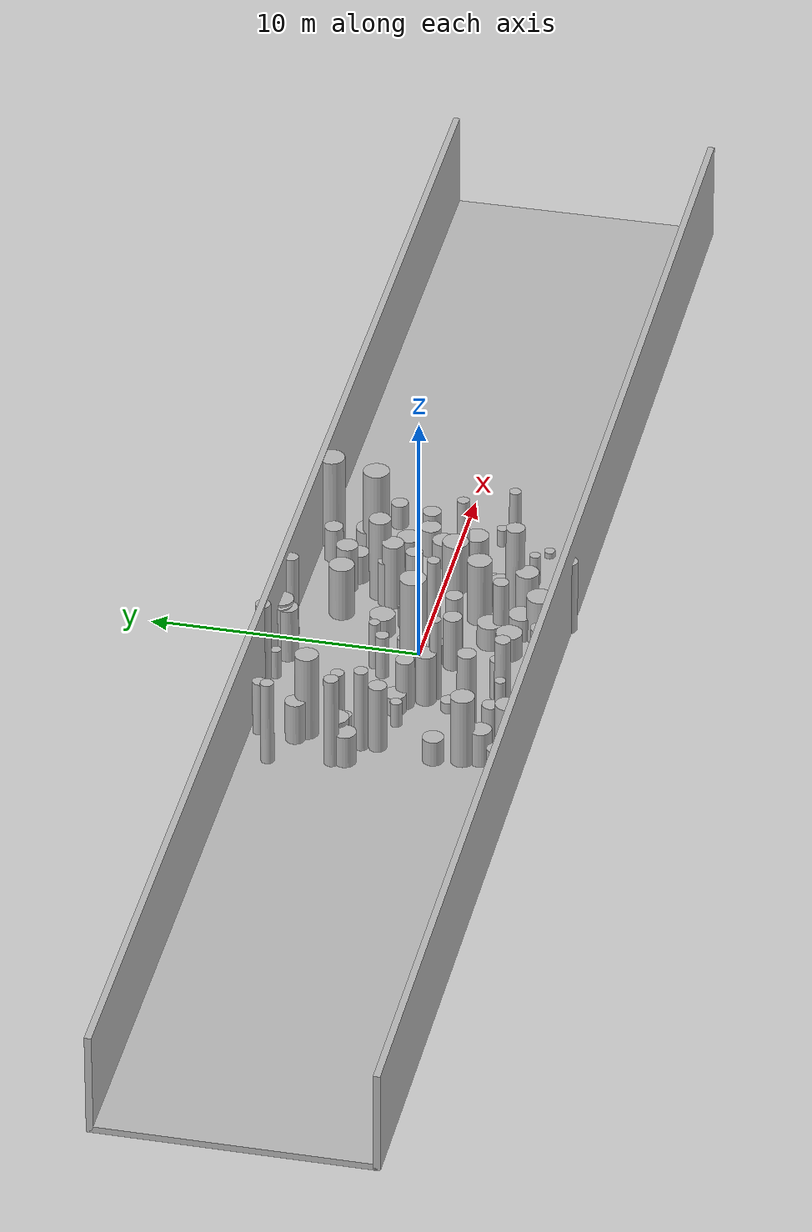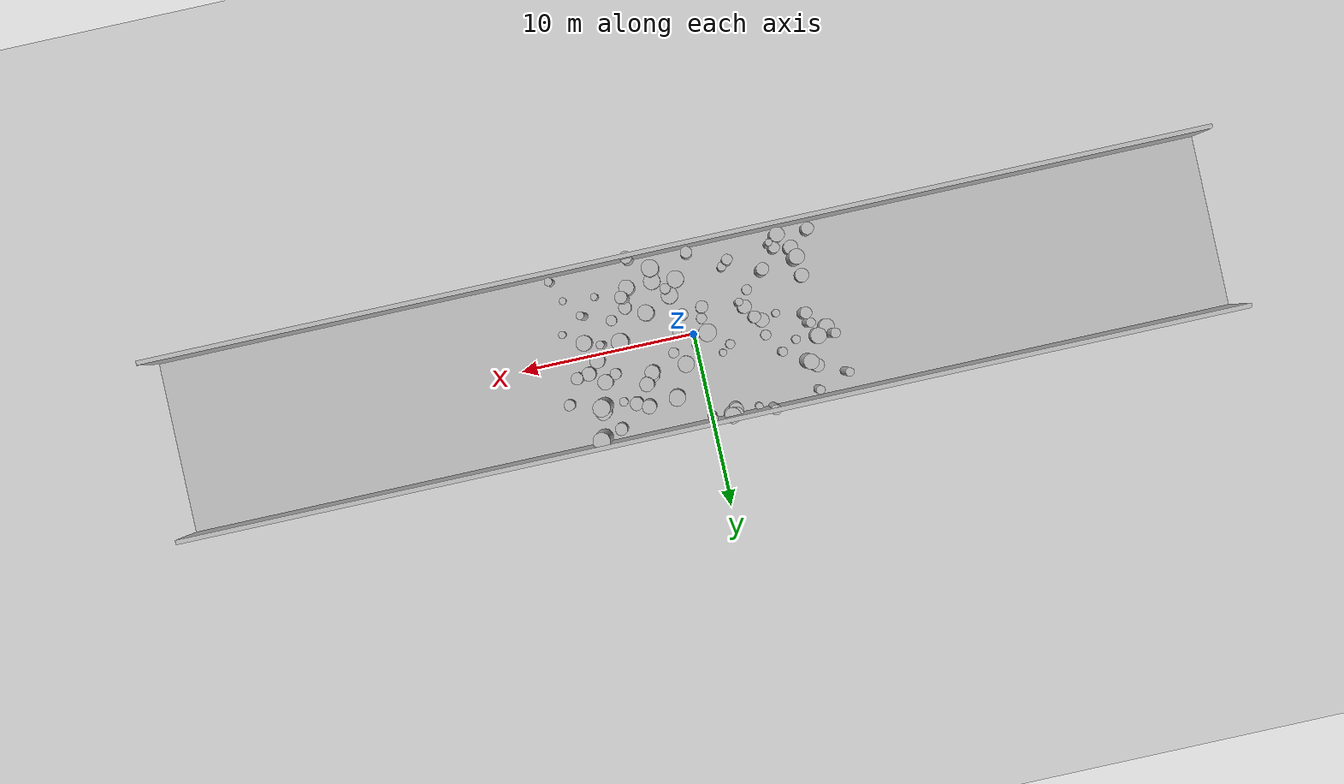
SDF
<sdf version="1.4">
 <world name="default">
  <include><uri>model://ground_plane</uri></include>
  <include><uri>model://sun</uri></include>
  <model name="forest">
   <static>true</static>
   <link name="cylinder0">
    <pose>3.4628413697569584 -2.289347202412324 0.6654422106744277 0 0 0</pose>
    <visual name="visual">
     <geometry>
      <cylinder><radius>0.3623388396721826</radius><length>1.3308844213488553</length></cylinder>
     </geometry>
    </visual>
    <collision name="collision">
     <geometry>
      <cylinder><radius>0.3623388396721826</radius><length>1.3308844213488553</length></cylinder>
     </geometry>
     <max_contacts>0</max_contacts>
    </collision>
   </link>
   <link name="cylinder1">
    <pose>6.147263556951511 -0.835973349621181 0.6341264469259545 0 0 0</pose>
    <visual name="visual">
     <geometry>
      <cylinder><radius>0.4507241850166356</radius><length>1.268252893851909</length></cylinder>
     </geometry>
    </visual>
    <collision name="collision">
     <geometry>
      <cylinder><radius>0.4507241850166356</radius><length>1.268252893851909</length></cylinder>
     </geometry>
     <max_contacts>0</max_contacts>
    </collision>
   </link>
   <link name="cylinder2">
    <pose>3.094544353400803 2.1330752488763967 1.812567046464061 0 0 0</pose>
    <visual name="visual">
     <geometry>
      <cylinder><radius>0.4040577179959649</radius><length>3.625134092928122</length></cylinder>
     </geometry>
    </visual>
    <collision name="collision">
     <geometry>
      <cylinder><radius>0.4040577179959649</radius><length>3.625134092928122</length></cylinder>
     </geometry>
     <max_contacts>0</max_contacts>
    </collision>
   </link>
   <link name="cylinder4">
    <pose>-3.506984922951794 -0.21980165004955943 1.118413497285194 0 0 0</pose>
    <visual name="visual">
     <geometry>
      <cylinder><radius>0.33879364524942096</radius><length>2.236826994570388</length></cylinder>
     </geometry>
    </visual>
    <collision name="collision">
     <geometry>
      <cylinder><radius>0.33879364524942096</radius><length>2.236826994570388</length></cylinder>
     </geometry>
     <max_contacts>0</max_contacts>
    </collision>
   </link>
   <link name="cylinder5">
    <pose>4.11257752636477 -0.46680314217459085 1.1587344306185745 0 0 0</pose>
    <visual name="visual">
     <geometry>
      <cylinder><radius>0.4856795118677984</radius><length>2.317468861237149</length></cylinder>
     </geometry>
    </visual>
    <collision name="collision">
     <geometry>
      <cylinder><radius>0.4856795118677984</radius><length>2.317468861237149</length></cylinder>
     </geometry>
     <max_contacts>0</max_contacts>
    </collision>
   </link>
   <link name="cylinder11">
    <pose>-0.05825835961387327 4.739265958560516 1.8411400147356047 0 0 0</pose>
    <visual name="visual">
     <geometry>
      <cylinder><radius>0.2696441374136169</radius><length>3.6822800294712095</length></cylinder>
     </geometry>
    </visual>
    <collision name="collision">
     <geometry>
      <cylinder><radius>0.2696441374136169</radius><length>3.6822800294712095</length></cylinder>
     </geometry>
     <max_contacts>0</max_contacts>
    </collision>
   </link>
   <link name="cylinder12">
    <pose>2.762917679618166 -4.942033731541792 1.4991604493968764 0 0 0</pose>
    <visual name="visual">
     <geometry>
      <cylinder><radius>0.3461101783480123</radius><length>2.998320898793753</length></cylinder>
     </geometry>
    </visual>
    <collision name="collision">
     <geometry>
      <cylinder><radius>0.3461101783480123</radius><length>2.998320898793753</length></cylinder>
     </geometry>
     <max_contacts>0</max_contacts>
    </collision>
   </link>
   <link name="cylinder14">
    <pose>0.8877093643061151 -0.3338838715916195 1.8151710364971445 0 0 0</pose>
    <visual name="visual">
     <geometry>
      <cylinder><radius>0.23752691512128796</radius><length>3.630342072994289</length></cylinder>
     </geometry>
    </visual>
    <collision name="collision">
     <geometry>
      <cylinder><radius>0.23752691512128796</radius><length>3.630342072994289</length></cylinder>
     </geometry>
     <max_contacts>0</max_contacts>
    </collision>
   </link>
   <link name="cylinder17">
    <pose>2.6635914078259475 1.8422723856421488 1.0551088756825966 0 0 0</pose>
    <visual name="visual">
     <geometry>
      <cylinder><radius>0.28559733410241817</radius><length>2.110217751365193</length></cylinder>
     </geometry>
    </visual>
    <collision name="collision">
     <geometry>
      <cylinder><radius>0.28559733410241817</radius><length>2.110217751365193</length></cylinder>
     </geometry>
     <max_contacts>0</max_contacts>
    </collision>
   </link>
   <link name="cylinder23">
    <pose>3.1184100152640184 -3.3486202408034194 1.025314523484191 0 0 0</pose>
    <visual name="visual">
     <geometry>
      <cylinder><radius>0.43551143325337116</radius><length>2.050629046968382</length></cylinder>
     </geometry>
    </visual>
    <collision name="collision">
     <geometry>
      <cylinder><radius>0.43551143325337116</radius><length>2.050629046968382</length></cylinder>
     </geometry>
     <max_contacts>0</max_contacts>
    </collision>
   </link>
   <link name="cylinder25">
    <pose>-5.387020528179072 -3.762625480102729 1.0475717393415385 0 0 0</pose>
    <visual name="visual">
     <geometry>
      <cylinder><radius>0.31639036446640323</radius><length>2.095143478683077</length></cylinder>
     </geometry>
    </visual>
    <collision name="collision">
     <geometry>
      <cylinder><radius>0.31639036446640323</radius><length>2.095143478683077</length></cylinder>
     </geometry>
     <max_contacts>0</max_contacts>
    </collision>
   </link>
   <link name="cylinder29">
    <pose>6.236275831533405 0.9180804808281193 0.6771144392514992 0 0 0</pose>
    <visual name="visual">
     <geometry>
      <cylinder><radius>0.39991615061004826</radius><length>1.3542288785029983</length></cylinder>
     </geometry>
    </visual>
    <collision name="collision">
     <geometry>
      <cylinder><radius>0.39991615061004826</radius><length>1.3542288785029983</length></cylinder>
     </geometry>
     <max_contacts>0</max_contacts>
    </collision>
   </link>
   <link name="cylinder31">
    <pose>3.9573640115104993 3.118142987065667 0.7258819883004495 0 0 0</pose>
    <visual name="visual">
     <geometry>
      <cylinder><radius>0.38532866954467454</radius><length>1.451763976600899</length></cylinder>
     </geometry>
    </visual>
    <collision name="collision">
     <geometry>
      <cylinder><radius>0.38532866954467454</radius><length>1.451763976600899</length></cylinder>
     </geometry>
     <max_contacts>0</max_contacts>
    </collision>
   </link>
   <link name="cylinder32">
    <pose>-0.5486599307565783 -4.5450918794384325 1.128984314593845 0 0 0</pose>
    <visual name="visual">
     <geometry><cylinder><radius>0.3287161685269954</radius><length>2.25796862918769</length></cylinder></geometry>
    </visual>
    <collision name="collision">
     <geometry><cylinder><radius>0.3287161685269954</radius><length>2.25796862918769</length></cylinder></geometry>
     <max_contacts>0</max_contacts>
    </collision>
   </link>
   <link name="cylinder39">
    <pose>1.0107388010496372 -2.806590820150193 1.473025414406747 0 0 0</pose>
    <visual name="visual">
     <geometry>
      <cylinder><radius>0.2869115808181266</radius><length>2.946050828813494</length></cylinder>
     </geometry>
    </visual>
    <collision name="collision">
     <geometry>
      <cylinder><radius>0.2869115808181266</radius><length>2.946050828813494</length></cylinder>
     </geometry>
     <max_contacts>0</max_contacts>
    </collision>
   </link>
   <link name="cylinder40">
    <pose>1.6088701362816984 -4.1246632977485245 1.0534164559563515 0 0 0</pose>
    <visual name="visual">
     <geometry>
      <cylinder><radius>0.48825325148155635</radius><length>2.106832911912703</length></cylinder>
     </geometry>
    </visual>
    <collision name="collision">
     <geometry>
      <cylinder><radius>0.48825325148155635</radius><length>2.106832911912703</length></cylinder>
     </geometry>
     <max_contacts>0</max_contacts>
    </collision>
   </link>
   <link name="cylinder42">
    <pose>-2.7956715817467845 -1.1946023405073234 1.8268806436719403 0 0 0</pose>
    <visual name="visual">
     <geometry>
      <cylinder><radius>0.2142210281344622</radius><length>3.6537612873438805</length></cylinder>
     </geometry>
    </visual>
    <collision name="collision">
     <geometry>
      <cylinder><radius>0.2142210281344622</radius><length>3.6537612873438805</length></cylinder>
     </geometry>
     <max_contacts>0</max_contacts>
    </collision>
   </link>
   <link name="cylinder43">
    <pose>-1.3618833687806848 4.812034877058039 1.2369376812254034 0 0 0</pose>
    <visual name="visual">
     <geometry>
      <cylinder><radius>0.3997781385621699</radius><length>2.4738753624508067</length></cylinder>
     </geometry>
    </visual>
    <collision name="collision">
     <geometry>
      <cylinder><radius>0.3997781385621699</radius><length>2.4738753624508067</length></cylinder>
     </geometry>
     <max_contacts>0</max_contacts>
    </collision>
   </link>
   <link name="cylinder45">
    <pose>2.699982590883643 1.5658500669668278 1.4553408265392491 0 0 0</pose>
    <visual name="visual">
     <geometry>
      <cylinder><radius>0.40754068568707985</radius><length>2.9106816530784982</length></cylinder>
     </geometry>
    </visual>
    <collision name="collision">
     <geometry>
      <cylinder><radius>0.40754068568707985</radius><length>2.9106816530784982</length></cylinder>
     </geometry>
     <max_contacts>0</max_contacts>
    </collision>
   </link>
   <link name="cylinder46">
    <pose>4.675669980994108 2.871554189658556 0.4341254402987136 0 0 0</pose>
    <visual name="visual">
     <geometry>
      <cylinder><radius>0.24977853423507435</radius><length>0.8682508805974272</length></cylinder>
     </geometry>
    </visual>
    <collision name="collision">
     <geometry>
      <cylinder><radius>0.24977853423507435</radius><length>0.8682508805974272</length></cylinder>
     </geometry>
     <max_contacts>0</max_contacts>
    </collision>
   </link>
   <link name="cylinder56">
    <pose>5.786715316405367 2.8610847154104864 1.9269355409061464 0 0 0</pose>
    <visual name="visual">
     <geometry>
      <cylinder><radius>0.4875926582956024</radius><length>3.8538710818122928</length></cylinder>
     </geometry>
    </visual>
    <collision name="collision">
     <geometry>
      <cylinder><radius>0.4875926582956024</radius><length>3.8538710818122928</length></cylinder>
     </geometry>
     <max_contacts>0</max_contacts>
    </collision>
   </link>
   <link name="cylinder57">
    <pose>6.853827936471674 -3.4298371440562625 0.24526550884120013 0 0 0</pose>
    <visual name="visual">
     <geometry>
      <cylinder><radius>0.2015334120040986</radius><length>0.49053101768240026</length></cylinder>
     </geometry>
    </visual>
    <collision name="collision">
     <geometry>
      <cylinder><radius>0.2015334120040986</radius><length>0.49053101768240026</length></cylinder>
     </geometry>
     <max_contacts>0</max_contacts>
    </collision>
   </link>
   <link name="cylinder58">
    <pose>4.77996997224507 1.2287385943814702 0.5858104529320367 0 0 0</pose>
    <visual name="visual">
     <geometry>
      <cylinder><radius>0.3166115571271382</radius><length>1.1716209058640734</length></cylinder>
     </geometry>
    </visual>
    <collision name="collision">
     <geometry>
      <cylinder><radius>0.3166115571271382</radius><length>1.1716209058640734</length></cylinder>
     </geometry>
     <max_contacts>0</max_contacts>
    </collision>
   </link>
   <link name="cylinder66">
    <pose>-4.755308234507233 -0.16865954887539303 0.6221579891203828 0 0 0</pose>
    <visual name="visual">
     <geometry>
      <cylinder><radius>0.2161028084125902</radius><length>1.2443159782407656</length></cylinder>
     </geometry>
    </visual>
    <collision name="collision">
     <geometry>
      <cylinder><radius>0.2161028084125902</radius><length>1.2443159782407656</length></cylinder>
     </geometry>
     <max_contacts>0</max_contacts>
    </collision>
   </link>
   <link name="cylinder69">
    <pose>1.6545361049470735 3.2540781081461585 1.2047178783333687 0 0 0</pose>
    <visual name="visual">
     <geometry>
      <cylinder><radius>0.4669682752164923</radius><length>2.4094357566667375</length></cylinder>
     </geometry>
    </visual>
    <collision name="collision">
     <geometry>
      <cylinder><radius>0.4669682752164923</radius><length>2.4094357566667375</length></cylinder>
     </geometry>
     <max_contacts>0</max_contacts>
    </collision>
   </link>
   <link name="cylinder71">
    <pose>-1.8663669013866055 0.9736581774018553 1.0069761986198955 0 0 0</pose>
    <visual name="visual">
     <geometry>
      <cylinder><radius>0.2519400063776923</radius><length>2.013952397239791</length></cylinder>
     </geometry>
    </visual>
    <collision name="collision">
     <geometry>
      <cylinder><radius>0.2519400063776923</radius><length>2.013952397239791</length></cylinder>
     </geometry>
     <max_contacts>0</max_contacts>
    </collision>
   </link>
   <link name="cylinder74">
    <pose>3.2904460794392065 3.4093247863137783 1.0771336419706645 0 0 0</pose>
    <visual name="visual">
     <geometry>
      <cylinder><radius>0.4006232998613821</radius><length>2.154267283941329</length></cylinder>
     </geometry>
    </visual>
    <collision name="collision">
     <geometry>
      <cylinder><radius>0.4006232998613821</radius><length>2.154267283941329</length></cylinder>
     </geometry>
     <max_contacts>0</max_contacts>
    </collision>
   </link>
   <link name="cylinder77">
    <pose>5.629155065892995 0.2879845286221627 0.6309809773300655 0 0 0</pose>
    <visual name="visual">
     <geometry>
      <cylinder><radius>0.43257338801105366</radius><length>1.261961954660131</length></cylinder>
     </geometry>
    </visual>
    <collision name="collision">
     <geometry>
      <cylinder><radius>0.43257338801105366</radius><length>1.261961954660131</length></cylinder>
     </geometry>
     <max_contacts>0</max_contacts>
    </collision>
   </link>
   <link name="cylinder78">
    <pose>0.8715351758022685 -2.4282599244527803 0.6046063216203329 0 0 0</pose>
    <visual name="visual">
     <geometry>
      <cylinder><radius>0.4758751512504867</radius><length>1.2092126432406658</length></cylinder>
     </geometry>
    </visual>
    <collision name="collision">
     <geometry>
      <cylinder><radius>0.4758751512504867</radius><length>1.2092126432406658</length></cylinder>
     </geometry>
     <max_contacts>0</max_contacts>
    </collision>
   </link>
   <link name="cylinder85">
    <pose>0.7863910488625763 1.548576271408857 0.5280076051594295 0 0 0</pose>
    <visual name="visual">
     <geometry>
      <cylinder><radius>0.4722202793988006</radius><length>1.056015210318859</length></cylinder>
     </geometry>
    </visual>
    <collision name="collision">
     <geometry>
      <cylinder><radius>0.4722202793988006</radius><length>1.056015210318859</length></cylinder>
     </geometry>
     <max_contacts>0</max_contacts>
    </collision>
   </link>
   <link name="cylinder86">
    <pose>-5.568193708116237 1.5223996841351264 0.4909826445302055 0 0 0</pose>
    <visual name="visual">
     <geometry>
      <cylinder><radius>0.24527921551812176</radius><length>0.981965289060411</length></cylinder>
     </geometry>
    </visual>
    <collision name="collision">
     <geometry>
      <cylinder><radius>0.24527921551812176</radius><length>0.981965289060411</length></cylinder>
     </geometry>
     <max_contacts>0</max_contacts>
    </collision>
   </link>
   <link name="cylinder87">
    <pose>-4.439568451101994 -2.685980406363566 1.7570160765028378 0 0 0</pose>
    <visual name="visual">
     <geometry>
      <cylinder><radius>0.3541496494956593</radius><length>3.5140321530056755</length></cylinder>
     </geometry>
    </visual>
    <collision name="collision">
     <geometry>
      <cylinder><radius>0.3541496494956593</radius><length>3.5140321530056755</length></cylinder>
     </geometry>
     <max_contacts>0</max_contacts>
    </collision>
   </link>
   <link name="cylinder97">
    <pose>-6.280055123024216 0.17378152963462945 1.4786445508308952 0 0 0</pose>
    <visual name="visual">
     <geometry>
      <cylinder><radius>0.33567492497228507</radius><length>2.9572891016617904</length></cylinder>
     </geometry>
    </visual>
    <collision name="collision">
     <geometry>
      <cylinder><radius>0.33567492497228507</radius><length>2.9572891016617904</length></cylinder>
     </geometry>
     <max_contacts>0</max_contacts>
    </collision>
   </link>
   <link name="cylinder98">
    <pose>-5.683671884689108 -4.412773708067476 1.2108211489341947 0 0 0</pose>
    <visual name="visual">
     <geometry>
      <cylinder><radius>0.42125182569411046</radius><length>2.4216422978683894</length></cylinder>
     </geometry>
    </visual>
    <collision name="collision">
     <geometry>
      <cylinder><radius>0.42125182569411046</radius><length>2.4216422978683894</length></cylinder>
     </geometry>
     <max_contacts>0</max_contacts>
    </collision>
   </link>
   <link name="cylinder100">
    <pose>0.3949588504941097 -1.204371911087625 1.2726974808545013 0 0 0</pose>
    <visual name="visual">
     <geometry>
      <cylinder><radius>0.32508580447038293</radius><length>2.5453949617090026</length></cylinder>
     </geometry>
    </visual>
    <collision name="collision">
     <geometry>
      <cylinder><radius>0.32508580447038293</radius><length>2.5453949617090026</length></cylinder>
     </geometry>
     <max_contacts>0</max_contacts>
    </collision>
   </link>
   <link name="cylinder102">
    <pose>7.6762216497336055 2.393394171760354 0.6262116841152856 0 0 0</pose>
    <visual name="visual">
     <geometry>
      <cylinder><radius>0.31420929099533573</radius><length>1.2524233682305712</length></cylinder>
     </geometry>
    </visual>
    <collision name="collision">
     <geometry>
      <cylinder><radius>0.31420929099533573</radius><length>1.2524233682305712</length></cylinder>
     </geometry>
     <max_contacts>0</max_contacts>
    </collision>
   </link>
   <link name="cylinder104">
    <pose>5.423183167117568 1.559778758041702 0.6869246939322828 0 0 0</pose>
    <visual name="visual">
     <geometry>
      <cylinder><radius>0.4390323352045561</radius><length>1.3738493878645657</length></cylinder>
     </geometry>
    </visual>
    <collision name="collision">
     <geometry>
      <cylinder><radius>0.4390323352045561</radius><length>1.3738493878645657</length></cylinder>
     </geometry>
     <max_contacts>0</max_contacts>
    </collision>
   </link>
   <link name="cylinder114">
    <pose>-2.7224206583395656 4.732515727977894 0.7097052029546217 0 0 0</pose>
    <visual name="visual">
     <geometry>
      <cylinder><radius>0.20595763137236203</radius><length>1.4194104059092434</length></cylinder>
     </geometry>
    </visual>
    <collision name="collision">
     <geometry>
      <cylinder><radius>0.20595763137236203</radius><length>1.4194104059092434</length></cylinder>
     </geometry>
     <max_contacts>0</max_contacts>
    </collision>
   </link>
   <link name="cylinder119">
    <pose>-2.66378308059252 -3.6314053258045487 1.516345776900242 0 0 0</pose>
    <visual name="visual">
     <geometry>
      <cylinder><radius>0.2964627098753851</radius><length>3.032691553800484</length></cylinder>
     </geometry>
    </visual>
    <collision name="collision">
     <geometry>
      <cylinder><radius>0.2964627098753851</radius><length>3.032691553800484</length></cylinder>
     </geometry>
     <max_contacts>0</max_contacts>
    </collision>
   </link>
   <link name="cylinder122">
    <pose>-3.9506577459599086 0.9081757008601556 0.5575991062560917 0 0 0</pose>
    <visual name="visual">
     <geometry>
      <cylinder><radius>0.28520930709784476</radius><length>1.1151982125121833</length></cylinder>
     </geometry>
    </visual>
    <collision name="collision">
     <geometry>
      <cylinder><radius>0.28520930709784476</radius><length>1.1151982125121833</length></cylinder>
     </geometry>
     <max_contacts>0</max_contacts>
    </collision>
   </link>
   <link name="cylinder130">
    <pose>-6.391006537208327 0.7546856443151135 1.7940950534680304 0 0 0</pose>
    <visual name="visual">
     <geometry>
      <cylinder><radius>0.25983702472124237</radius><length>3.588190106936061</length></cylinder>
     </geometry>
    </visual>
    <collision name="collision">
     <geometry>
      <cylinder><radius>0.25983702472124237</radius><length>3.588190106936061</length></cylinder>
     </geometry>
     <max_contacts>0</max_contacts>
    </collision>
   </link>
   <link name="cylinder134">
    <pose>-5.948484421523247 2.843861366214753 1.8415941078281086 0 0 0</pose>
    <visual name="visual">
     <geometry>
      <cylinder><radius>0.43275992044881484</radius><length>3.6831882156562172</length></cylinder>
     </geometry>
    </visual>
    <collision name="collision">
     <geometry>
      <cylinder><radius>0.43275992044881484</radius><length>3.6831882156562172</length></cylinder>
     </geometry>
     <max_contacts>0</max_contacts>
    </collision>
   </link>
   <link name="cylinder136">
    <pose>-2.325408589185951 -3.3560038356054536 0.9510909424945589 0 0 0</pose>
    <visual name="visual">
     <geometry>
      <cylinder><radius>0.25393990341753425</radius><length>1.9021818849891179</length></cylinder>
     </geometry>
    </visual>
    <collision name="collision">
     <geometry>
      <cylinder><radius>0.25393990341753425</radius><length>1.9021818849891179</length></cylinder>
     </geometry>
     <max_contacts>0</max_contacts>
    </collision>
   </link>
   <link name="cylinder140">
    <pose>-3.4593566073173605 -1.8187226144412074 0.338260636819577 0 0 0</pose>
    <visual name="visual">
     <geometry>
      <cylinder><radius>0.2880274842030197</radius><length>0.676521273639154</length></cylinder>
     </geometry>
    </visual>
    <collision name="collision">
     <geometry>
      <cylinder><radius>0.2880274842030197</radius><length>0.676521273639154</length></cylinder>
     </geometry>
     <max_contacts>0</max_contacts>
    </collision>
   </link>
   <link name="cylinder146">
    <pose>5.861463070000404 -2.323537886817478 1.814522902380173 0 0 0</pose>
    <visual name="visual">
     <geometry>
      <cylinder><radius>0.2202311683914121</radius><length>3.629045804760346</length></cylinder>
     </geometry>
    </visual>
    <collision name="collision">
     <geometry>
      <cylinder><radius>0.2202311683914121</radius><length>3.629045804760346</length></cylinder>
     </geometry>
     <max_contacts>0</max_contacts>
    </collision>
   </link>
   <link name="cylinder150">
    <pose>-6.788090745873237 1.5723957532274904 0.8669510655005104 0 0 0</pose>
    <visual name="visual">
     <geometry>
      <cylinder><radius>0.4527155918316892</radius><length>1.7339021310010208</length></cylinder>
     </geometry>
    </visual>
    <collision name="collision">
     <geometry>
      <cylinder><radius>0.4527155918316892</radius><length>1.7339021310010208</length></cylinder>
     </geometry>
     <max_contacts>0</max_contacts>
    </collision>
   </link>
   <link name="cylinder156">
    <pose>3.4702703659129988 -2.8287180738920883 1.8412504441890714 0 0 0</pose>
    <visual name="visual">
     <geometry>
      <cylinder><radius>0.34940969093807484</radius><length>3.6825008883781427</length></cylinder>
     </geometry>
    </visual>
    <collision name="collision">
     <geometry>
      <cylinder><radius>0.34940969093807484</radius><length>3.6825008883781427</length></cylinder>
     </geometry>
     <max_contacts>0</max_contacts>
    </collision>
   </link>
   <link name="cylinder157">
    <pose>-3.0774816901654347 -0.9008614782477355 1.1687407277350574 0 0 0</pose>
    <visual name="visual">
     <geometry>
      <cylinder><radius>0.3881659814689544</radius><length>2.337481455470115</length></cylinder>
     </geometry>
    </visual>
    <collision name="collision">
     <geometry>
      <cylinder><radius>0.3881659814689544</radius><length>2.337481455470115</length></cylinder>
     </geometry>
     <max_contacts>0</max_contacts>
    </collision>
   </link>
   <link name="cylinder160">
    <pose>5.01935211970072 -3.248253495066409 0.7517513918389409 0 0 0</pose>
    <visual name="visual">
     <geometry>
      <cylinder><radius>0.2022116689177073</radius><length>1.5035027836778818</length></cylinder>
     </geometry>
    </visual>
    <collision name="collision">
     <geometry>
      <cylinder><radius>0.2022116689177073</radius><length>1.5035027836778818</length></cylinder>
     </geometry>
     <max_contacts>0</max_contacts>
    </collision>
   </link>
   <link name="cylinder161">
    <pose>-6.209468546520981 4.529495310865057 1.2208142598214122 0 0 0</pose>
    <visual name="visual">
     <geometry>
      <cylinder><radius>0.24963566641031718</radius><length>2.4416285196428245</length></cylinder>
     </geometry>
    </visual>
    <collision name="collision">
     <geometry>
      <cylinder><radius>0.24963566641031718</radius><length>2.4416285196428245</length></cylinder>
     </geometry>
     <max_contacts>0</max_contacts>
    </collision>
   </link>
   <link name="cylinder162">
    <pose>-0.7507850667948297 -1.3916025365280973 1.2081386614975607 0 0 0</pose>
    <visual name="visual">
     <geometry>
      <cylinder><radius>0.34837308025058206</radius><length>2.4162773229951213</length></cylinder>
     </geometry>
    </visual>
    <collision name="collision">
     <geometry>
      <cylinder><radius>0.34837308025058206</radius><length>2.4162773229951213</length></cylinder>
     </geometry>
     <max_contacts>0</max_contacts>
    </collision>
   </link>
   <link name="cylinder166">
    <pose>-1.3673049478545636 1.3570399481473299 1.0922549228820184 0 0 0</pose>
    <visual name="visual">
     <geometry>
      <cylinder><radius>0.2052142427631326</radius><length>2.184509845764037</length></cylinder>
     </geometry>
    </visual>
    <collision name="collision">
     <geometry>
      <cylinder><radius>0.2052142427631326</radius><length>2.184509845764037</length></cylinder>
     </geometry>
     <max_contacts>0</max_contacts>
    </collision>
   </link>
   <link name="cylinder169">
    <pose>-3.517698101616279 4.990526897175393 1.956826783128841 0 0 0</pose>
    <visual name="visual">
     <geometry>
      <cylinder><radius>0.2825239033152928</radius><length>3.913653566257682</length></cylinder>
     </geometry>
    </visual>
    <collision name="collision">
     <geometry>
      <cylinder><radius>0.2825239033152928</radius><length>3.913653566257682</length></cylinder>
     </geometry>
     <max_contacts>0</max_contacts>
    </collision>
   </link>
   <link name="cylinder170">
    <pose>-0.7498218437035078 0.0755795326535651 1.947378345902307 0 0 0</pose>
    <visual name="visual">
     <geometry>
      <cylinder><radius>0.4957618144513889</radius><length>3.894756691804614</length></cylinder>
     </geometry>
    </visual>
    <collision name="collision">
     <geometry>
      <cylinder><radius>0.4957618144513889</radius><length>3.894756691804614</length></cylinder>
     </geometry>
     <max_contacts>0</max_contacts>
    </collision>
   </link>
   <link name="cylinder172">
    <pose>-4.644330894726025 2.0170469353066336 1.0512045595135302 0 0 0</pose>
    <visual name="visual">
     <geometry>
      <cylinder><radius>0.2531844296209317</radius><length>2.1024091190270604</length></cylinder>
     </geometry>
    </visual>
    <collision name="collision">
     <geometry>
      <cylinder><radius>0.2531844296209317</radius><length>2.1024091190270604</length></cylinder>
     </geometry>
     <max_contacts>0</max_contacts>
    </collision>
   </link>
   <link name="cylinder175">
    <pose>-6.33150875215982 -3.594708127352501 0.8237941330884213 0 0 0</pose>
    <visual name="visual">
     <geometry>
      <cylinder><radius>0.40617221915281626</radius><length>1.6475882661768426</length></cylinder>
     </geometry>
    </visual>
    <collision name="collision">
     <geometry>
      <cylinder><radius>0.40617221915281626</radius><length>1.6475882661768426</length></cylinder>
     </geometry>
     <max_contacts>0</max_contacts>
    </collision>
   </link>
   <link name="cylinder180">
    <pose>-1.148679589691998 4.857136909236388 1.2831426293864845 0 0 0</pose>
    <visual name="visual">
     <geometry>
      <cylinder><radius>0.4545446295829586</radius><length>2.566285258772969</length></cylinder>
     </geometry>
    </visual>
    <collision name="collision">
     <geometry>
      <cylinder><radius>0.4545446295829586</radius><length>2.566285258772969</length></cylinder>
     </geometry>
     <max_contacts>0</max_contacts>
    </collision>
   </link>
   <link name="cylinder182">
    <pose>5.149985609476488 -0.5335489690695905 1.7293725645221327 0 0 0</pose>
    <visual name="visual">
     <geometry>
      <cylinder><radius>0.22442775797780767</radius><length>3.4587451290442655</length></cylinder>
     </geometry>
    </visual>
    <collision name="collision">
     <geometry>
      <cylinder><radius>0.22442775797780767</radius><length>3.4587451290442655</length></cylinder>
     </geometry>
     <max_contacts>0</max_contacts>
    </collision>
   </link>
   <link name="cylinder184">
    <pose>0.3607929302899997 -3.251031668619352 0.6138314921845263 0 0 0</pose>
    <visual name="visual">
     <geometry>
      <cylinder><radius>0.4844113006176365</radius><length>1.2276629843690525</length></cylinder>
     </geometry>
    </visual>
    <collision name="collision">
     <geometry>
      <cylinder><radius>0.4844113006176365</radius><length>1.2276629843690525</length></cylinder>
     </geometry>
     <max_contacts>0</max_contacts>
    </collision>
   </link>
   <link name="cylinder186">
    <pose>7.31634289567797 -4.607269192866355 0.8725561389441922 0 0 0</pose>
    <visual name="visual">
     <geometry>
      <cylinder><radius>0.2291184857436406</radius><length>1.7451122778883843</length></cylinder>
     </geometry>
    </visual>
    <collision name="collision">
     <geometry>
      <cylinder><radius>0.2291184857436406</radius><length>1.7451122778883843</length></cylinder>
     </geometry>
     <max_contacts>0</max_contacts>
    </collision>
   </link>
   <link name="cylinder187">
    <pose>-5.104981232715648 -4.049043495549116 1.4960587276582626 0 0 0</pose>
    <visual name="visual">
     <geometry>
      <cylinder><radius>0.201668906090113</radius><length>2.9921174553165253</length></cylinder>
     </geometry>
    </visual>
    <collision name="collision">
     <geometry>
      <cylinder><radius>0.201668906090113</radius><length>2.9921174553165253</length></cylinder>
     </geometry>
     <max_contacts>0</max_contacts>
    </collision>
   </link>
   <link name="cylinder193">
    <pose>5.092254466648143 4.316818648879579 0.821963876229642 0 0 0</pose>
    <visual name="visual">
     <geometry>
      <cylinder><radius>0.3502251150340121</radius><length>1.643927752459284</length></cylinder>
     </geometry>
    </visual>
    <collision name="collision">
     <geometry>
      <cylinder><radius>0.3502251150340121</radius><length>1.643927752459284</length></cylinder>
     </geometry>
     <max_contacts>0</max_contacts>
    </collision>
   </link>
   <link name="cylinder194">
    <pose>-1.49927408556238 4.4396116089491535 0.9271505423141964 0 0 0</pose>
    <visual name="visual">
     <geometry>
      <cylinder><radius>0.21043821934375312</radius><length>1.8543010846283927</length></cylinder>
     </geometry>
    </visual>
    <collision name="collision">
     <geometry>
      <cylinder><radius>0.21043821934375312</radius><length>1.8543010846283927</length></cylinder>
     </geometry>
     <max_contacts>0</max_contacts>
    </collision>
   </link>
   <link name="cylinder196">
    <pose>0.04182769049146273 0.6212919952940386 0.3159187254300615 0 0 0</pose>
    <visual name="visual">
     <geometry>
      <cylinder><radius>0.20877527402568447</radius><length>0.631837450860123</length></cylinder>
     </geometry>
    </visual>
    <collision name="collision">
     <geometry>
      <cylinder><radius>0.20877527402568447</radius><length>0.631837450860123</length></cylinder>
     </geometry>
     <max_contacts>0</max_contacts>
    </collision>
   </link>
   <link name="cylinder204">
    <pose>4.383978600868183 -1.760826099343352 0.36454692677766354 0 0 0</pose>
    <visual name="visual">
     <geometry>
      <cylinder><radius>0.3038955717631259</radius><length>0.7290938535553271</length></cylinder>
     </geometry>
    </visual>
    <collision name="collision">
     <geometry>
      <cylinder><radius>0.3038955717631259</radius><length>0.7290938535553271</length></cylinder>
     </geometry>
     <max_contacts>0</max_contacts>
    </collision>
   </link>
   <link name="cylinder209">
    <pose>1.3262823204745544 0.7734803227845983 0.5736821106784566 0 0 0</pose>
    <visual name="visual">
     <geometry><cylinder><radius>0.29235607816012</radius><length>1.1473642213569133</length></cylinder></geometry>
    </visual>
    <collision name="collision">
     <geometry><cylinder><radius>0.29235607816012</radius><length>1.1473642213569133</length></cylinder></geometry>
     <max_contacts>0</max_contacts>
    </collision>
   </link>
   <link name="cylinder210">
    <pose>-3.9177316094760144 0.04457648483567134 0.5041146248462121 0 0 0</pose>
    <visual name="visual">
     <geometry>
      <cylinder><radius>0.40535156498332203</radius><length>1.0082292496924241</length></cylinder>
     </geometry>
    </visual>
    <collision name="collision">
     <geometry>
      <cylinder><radius>0.40535156498332203</radius><length>1.0082292496924241</length></cylinder>
     </geometry>
     <max_contacts>0</max_contacts>
    </collision>
   </link>
   <link name="cylinder211">
    <pose>-7.890460488794044 3.85071844190046 1.8181336002648785 0 0 0</pose>
    <visual name="visual">
     <geometry>
      <cylinder><radius>0.2440030383509528</radius><length>3.636267200529757</length></cylinder>
     </geometry>
    </visual>
    <collision name="collision">
     <geometry>
      <cylinder><radius>0.2440030383509528</radius><length>3.636267200529757</length></cylinder>
     </geometry>
     <max_contacts>0</max_contacts>
    </collision>
   </link>
   <link name="cylinder214">
    <pose>-7.555451913278372 1.5867490936970654 1.9564379315560636 0 0 0</pose>
    <visual name="visual">
     <geometry><cylinder><radius>0.271689474818405</radius><length>3.912875863112127</length></cylinder></geometry>
    </visual>
    <collision name="collision">
     <geometry><cylinder><radius>0.271689474818405</radius><length>3.912875863112127</length></cylinder></geometry>
     <max_contacts>0</max_contacts>
    </collision>
   </link>
   <link name="cylinder216">
    <pose>7.2626937649397405 -1.5628480243638188 0.47624434970344914 0 0 0</pose>
    <visual name="visual">
     <geometry>
      <cylinder><radius>0.20734505105444057</radius><length>0.9524886994068983</length></cylinder>
     </geometry>
    </visual>
    <collision name="collision">
     <geometry>
      <cylinder><radius>0.20734505105444057</radius><length>0.9524886994068983</length></cylinder>
     </geometry>
     <max_contacts>0</max_contacts>
    </collision>
   </link>
   <link name="cylinder219">
    <pose>6.159166650574722 4.615378544023409 1.9828806995319854 0 0 0</pose>
    <visual name="visual">
     <geometry>
      <cylinder><radius>0.4832925788154211</radius><length>3.965761399063971</length></cylinder>
     </geometry>
    </visual>
    <collision name="collision">
     <geometry>
      <cylinder><radius>0.4832925788154211</radius><length>3.965761399063971</length></cylinder>
     </geometry>
     <max_contacts>0</max_contacts>
    </collision>
   </link>
   <link name="cylinder220">
    <pose>6.917796637487061 1.0227464140134916 0.7841718543574975 0 0 0</pose>
    <visual name="visual">
     <geometry>
      <cylinder><radius>0.3441915299588012</radius><length>1.568343708714995</length></cylinder>
     </geometry>
    </visual>
    <collision name="collision">
     <geometry>
      <cylinder><radius>0.3441915299588012</radius><length>1.568343708714995</length></cylinder>
     </geometry>
     <max_contacts>0</max_contacts>
    </collision>
   </link>
   <link name="cylinder231">
    <pose>-6.633031147234963 -1.9313452488432805 0.6318041415130401 0 0 0</pose>
    <visual name="visual">
     <geometry>
      <cylinder><radius>0.39306828832628726</radius><length>1.2636082830260802</length></cylinder>
     </geometry>
    </visual>
    <collision name="collision">
     <geometry>
      <cylinder><radius>0.39306828832628726</radius><length>1.2636082830260802</length></cylinder>
     </geometry>
     <max_contacts>0</max_contacts>
    </collision>
   </link>
   <link name="cylinder234">
    <pose>-1.4148615449799955 4.573747587942705 1.2155006126261367 0 0 0</pose>
    <visual name="visual">
     <geometry>
      <cylinder><radius>0.3858924651713056</radius><length>2.4310012252522735</length></cylinder>
     </geometry>
    </visual>
    <collision name="collision">
     <geometry>
      <cylinder><radius>0.3858924651713056</radius><length>2.4310012252522735</length></cylinder>
     </geometry>
     <max_contacts>0</max_contacts>
    </collision>
   </link>
   <link name="cylinder235">
    <pose>2.3442572023249078 -1.7316104914160713 1.4225962369754548 0 0 0</pose>
    <visual name="visual">
     <geometry>
      <cylinder><radius>0.45178199858837786</radius><length>2.8451924739509096</length></cylinder>
     </geometry>
    </visual>
    <collision name="collision">
     <geometry>
      <cylinder><radius>0.45178199858837786</radius><length>2.8451924739509096</length></cylinder>
     </geometry>
     <max_contacts>0</max_contacts>
    </collision>
   </link>
   <link name="cylinder236">
    <pose>5.895924197287705 3.1635877341502763 0.6173795756383853 0 0 0</pose>
    <visual name="visual">
     <geometry>
      <cylinder><radius>0.47662485917940783</radius><length>1.2347591512767706</length></cylinder>
     </geometry>
    </visual>
    <collision name="collision">
     <geometry>
      <cylinder><radius>0.47662485917940783</radius><length>1.2347591512767706</length></cylinder>
     </geometry>
     <max_contacts>0</max_contacts>
    </collision>
   </link>
   <link name="cylinder239">
    <pose>-7.3613883783452785 1.139656040247833 0.7689070246084027 0 0 0</pose>
    <visual name="visual">
     <geometry>
      <cylinder><radius>0.42315803289879095</radius><length>1.5378140492168053</length></cylinder>
     </geometry>
    </visual>
    <collision name="collision">
     <geometry>
      <cylinder><radius>0.42315803289879095</radius><length>1.5378140492168053</length></cylinder>
     </geometry>
     <max_contacts>0</max_contacts>
    </collision>
   </link>
   <link name="cylinder241">
    <pose>-6.380280483738492 3.169521470057262 0.9509296068667302 0 0 0</pose>
    <visual name="visual">
     <geometry>
      <cylinder><radius>0.37546280467030846</radius><length>1.9018592137334605</length></cylinder>
     </geometry>
    </visual>
    <collision name="collision">
     <geometry>
      <cylinder><radius>0.37546280467030846</radius><length>1.9018592137334605</length></cylinder>
     </geometry>
     <max_contacts>0</max_contacts>
    </collision>
   </link>
   <link name="cylinder242">
    <pose>-0.6060160151240908 -0.7794738919628097 0.5499598894460254 0 0 0</pose>
    <visual name="visual">
     <geometry>
      <cylinder><radius>0.29480409756879244</radius><length>1.0999197788920507</length></cylinder>
     </geometry>
    </visual>
    <collision name="collision">
     <geometry>
      <cylinder><radius>0.29480409756879244</radius><length>1.0999197788920507</length></cylinder>
     </geometry>
     <max_contacts>0</max_contacts>
    </collision>
   </link>
   <link name="cylinder244">
    <pose>1.676968047736377 -3.42972743182151 0.5914917841917908 0 0 0</pose>
    <visual name="visual">
     <geometry>
      <cylinder><radius>0.47616632879565185</radius><length>1.1829835683835817</length></cylinder>
     </geometry>
    </visual>
    <collision name="collision">
     <geometry>
      <cylinder><radius>0.47616632879565185</radius><length>1.1829835683835817</length></cylinder>
     </geometry>
     <max_contacts>0</max_contacts>
    </collision>
   </link>
   <link name="cylinder247">
    <pose>-7.46208446935378 -4.418434070616001 0.8556372865135919 0 0 0</pose>
    <visual name="visual">
     <geometry>
      <cylinder><radius>0.35711552203720487</radius><length>1.7112745730271839</length></cylinder>
     </geometry>
    </visual>
    <collision name="collision">
     <geometry>
      <cylinder><radius>0.35711552203720487</radius><length>1.7112745730271839</length></cylinder>
     </geometry>
     <max_contacts>0</max_contacts>
    </collision>
   </link>
   <link name="cylinder249">
    <pose>-6.447801905216416 -2.962353941182575 1.5330467249940118 0 0 0</pose>
    <visual name="visual">
     <geometry>
      <cylinder><radius>0.43877575049766837</radius><length>3.0660934499880237</length></cylinder>
     </geometry>
    </visual>
    <collision name="collision">
     <geometry>
      <cylinder><radius>0.43877575049766837</radius><length>3.0660934499880237</length></cylinder>
     </geometry>
     <max_contacts>0</max_contacts>
    </collision>
   </link>
   <link name="cube0">
    <pose>0 5.0 2.0 0 0 0</pose>
    <visual name="visual"><geometry><box><size>60.0 0.25 4.0</size></box></geometry></visual>
    <collision name="collision">
     <geometry><box><size>60.0 0.25 4.0</size></box></geometry>
     <max_contacts>0</max_contacts>
    </collision>
   </link>
   <link name="cube1">
    <pose>0 -5.0 2.0 0 0 0</pose>
    <visual name="visual"><geometry><box><size>60.0 0.25 4.0</size></box></geometry></visual>
    <collision name="collision">
     <geometry><box><size>60.0 0.25 4.0</size></box></geometry>
     <max_contacts>0</max_contacts>
    </collision>
   </link>
   <link name="cube2">
    <pose>0 0 0.125 0 0 0</pose>
    <visual name="visual"><geometry><box><size>60.0 10 0.25</size></box></geometry></visual>
    <collision name="collision">
     <geometry><box><size>60.0 10 0.25</size></box></geometry>
     <max_contacts>0</max_contacts>
    </collision>
   </link>
  </model>
 </world>
</sdf>
